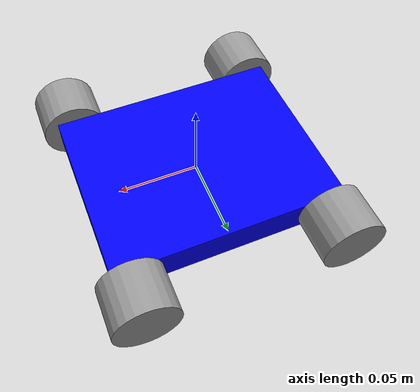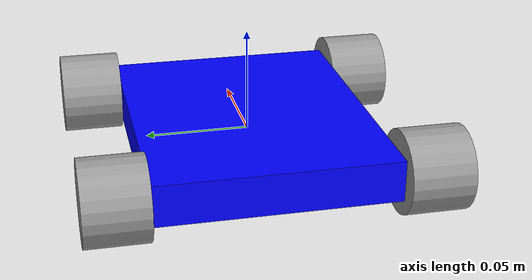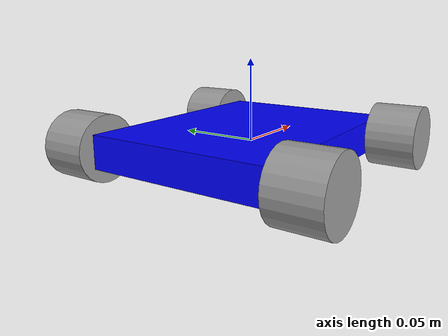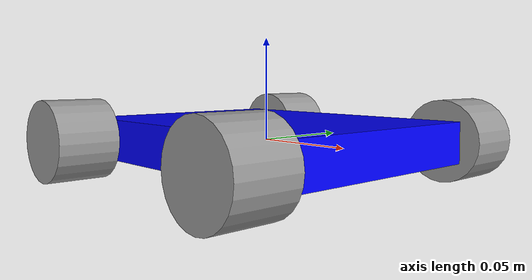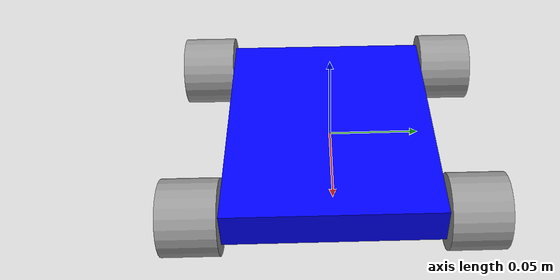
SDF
<?xml version='1.0'?>
<sdf version='1.6'>
  <model name='nanocrawler'>
    <link name='chassis'>
      <pose frame=''>0 0 0.0 0 -0 0</pose>
      <inertial>
        <mass>1</mass>
        <inertia>
          <ixx>0.166667</ixx>
          <ixy>0</ixy>
          <ixz>0</ixz>
          <iyy>0.166667</iyy>
          <iyz>0</iyz>
          <izz>0.166667</izz>
        </inertia>
        <pose frame=''>0 0 0 0 -0 0</pose>
      </inertial>
      <gravity>1</gravity>
      <self_collide>0</self_collide>
      <kinematic>0</kinematic>
      <visual name='visual'>
        <pose frame=''>0 0 0 0 -0 0</pose>
        <geometry>
          <box>
            <size>0.145 0.115 0.02</size>
          </box>
        </geometry>
        <material>
          <lighting>1</lighting>
          <script>
            <uri>file://media/materials/scripts/gazebo.material</uri>
            <name>Gazebo/Grey</name>
          </script>
          <shader type='pixel'>
            <normal_map>__default__</normal_map>
          </shader>
          <ambient>0 0 1 1</ambient>
          <diffuse>0.7 0.7 0.7 1</diffuse>
          <specular>0.01 0.01 0.01 1</specular>
          <emissive>0 0 0 1</emissive>
        </material>
        <transparency>0</transparency>
        <cast_shadows>1</cast_shadows>
      </visual>
      <collision name='collision'>
        <laser_retro>0</laser_retro>
        <max_contacts>10</max_contacts>
        <pose frame=''>0 0 0 0 -0 0</pose>
        <geometry>
          <box>
            <size>0.145 0.115 0.02</size>
          </box>
        </geometry>
        <surface>
          <friction>
            <ode>
              <mu>1</mu>
              <mu2>1</mu2>
              <fdir1>0 0 0</fdir1>
              <slip1>0</slip1>
              <slip2>0</slip2>
            </ode>
            <torsional>
              <coefficient>1</coefficient>
              <patch_radius>0</patch_radius>
              <surface_radius>0</surface_radius>
              <use_patch_radius>1</use_patch_radius>
              <ode>
                <slip>0</slip>
              </ode>
            </torsional>
          </friction>
          <bounce>
            <restitution_coefficient>0</restitution_coefficient>
            <threshold>1e+06</threshold>
          </bounce>
          <contact>
            <collide_without_contact>0</collide_without_contact>
            <collide_without_contact_bitmask>1</collide_without_contact_bitmask>
            <collide_bitmask>1</collide_bitmask>
            <ode>
              <soft_cfm>0</soft_cfm>
              <soft_erp>0.2</soft_erp>
              <kp>1e+13</kp>
              <kd>1</kd>
              <max_vel>0.01</max_vel>
              <min_depth>0</min_depth>
            </ode>
            <bullet>
              <split_impulse>1</split_impulse>
              <split_impulse_penetration_threshold>-0.01</split_impulse_penetration_threshold>
              <soft_cfm>0</soft_cfm>
              <soft_erp>0.2</soft_erp>
              <kp>1e+13</kp>
              <kd>1</kd>
            </bullet>
          </contact>
        </surface>
      </collision>
    </link>

    <link name='left_front_wheel'>
      <pose frame=''>0.0625 0.0725 0 1.5708 -0 0</pose>
      <inertial>
        <mass>1</mass>
        <inertia>
          <ixx>0.145833</ixx>
          <ixy>0</ixy>
          <ixz>0</ixz>
          <iyy>0.145833</iyy>
          <iyz>0</iyz>
          <izz>0.125</izz>
        </inertia>
        <pose frame=''>0 0 0 0 -0 0</pose>
      </inertial>
      <gravity>1</gravity>
      <self_collide>0</self_collide>
      <kinematic>0</kinematic>
      <visual name='visual'>
        <pose frame=''>0 0 0 0 -0 0</pose>
        <geometry>
          <cylinder>
            <radius>0.02</radius>
            <length>0.03</length>
          </cylinder>
        </geometry>
        <material>
          <lighting>1</lighting>
          <script>
            <uri>file://media/materials/scripts/gazebo.material</uri>
            <name>Gazebo/Grey</name>
          </script>
          <shader type='pixel'>
            <normal_map>__default__</normal_map>
          </shader>
          <ambient>0.1 0.1 0.1 1</ambient>
          <diffuse>0.7 0.7 0.7 1</diffuse>
          <specular>0.01 0.01 0.01 1</specular>
          <emissive>0 0 0 1</emissive>
        </material>
        <transparency>0</transparency>
        <cast_shadows>1</cast_shadows>
      </visual>
      <collision name='collision'>
        <laser_retro>0</laser_retro>
        <max_contacts>10</max_contacts>
        <pose frame=''>0 0 0 0 -0 0</pose>
        <geometry>
          <cylinder>
            <radius>0.02</radius>
            <length>0.03</length>
          </cylinder>
        </geometry>
        <surface>
          <friction>
            <ode>
              <mu>1</mu>
              <mu2>1</mu2>
              <fdir1>0 0 0</fdir1>
              <slip1>0</slip1>
              <slip2>0</slip2>
            </ode>
            <torsional>
              <coefficient>1</coefficient>
              <patch_radius>0</patch_radius>
              <surface_radius>0</surface_radius>
              <use_patch_radius>1</use_patch_radius>
              <ode>
                <slip>0</slip>
              </ode>
            </torsional>
          </friction>
          <bounce>
            <restitution_coefficient>0</restitution_coefficient>
            <threshold>1e+06</threshold>
          </bounce>
          <contact>
            <collide_without_contact>0</collide_without_contact>
            <collide_without_contact_bitmask>1</collide_without_contact_bitmask>
            <collide_bitmask>1</collide_bitmask>
            <ode>
              <soft_cfm>0</soft_cfm>
              <soft_erp>0.2</soft_erp>
              <kp>1e+13</kp>
              <kd>1</kd>
              <max_vel>0.01</max_vel>
              <min_depth>0</min_depth>
            </ode>
            <bullet>
              <split_impulse>1</split_impulse>
              <split_impulse_penetration_threshold>-0.01</split_impulse_penetration_threshold>
              <soft_cfm>0</soft_cfm>
              <soft_erp>0.2</soft_erp>
              <kp>1e+13</kp>
              <kd>1</kd>
            </bullet>
          </contact>
        </surface>
      </collision>
    </link>
    <joint type="revolute" name="left_front_wheel_hinge">
        <pose>-0 0 -0 0 0 0</pose>
        <child>left_front_wheel</child>
        <parent>chassis</parent>
        <axis>
          <xyz>0 0 1</xyz>
        </axis>
      </joint>

    <link name='right_front_wheel'>
      <pose frame=''>0.0625 -0.0725 0 1.5708 -0 0</pose>
      <inertial>
        <mass>1</mass>
        <inertia>
          <ixx>0.145833</ixx>
          <ixy>0</ixy>
          <ixz>0</ixz>
          <iyy>0.145833</iyy>
          <iyz>0</iyz>
          <izz>0.125</izz>
        </inertia>
        <pose frame=''>0 0 0 0 -0 0</pose>
      </inertial>
      <gravity>1</gravity>
      <self_collide>0</self_collide>
      <kinematic>0</kinematic>
      <visual name='visual'>
        <pose frame=''>0 0 0 0 -0 0</pose>
        <geometry>
          <cylinder>
            <radius>0.02</radius>
            <length>0.03</length>
          </cylinder>
        </geometry>
        <material>
          <lighting>1</lighting>
          <script>
            <uri>file://media/materials/scripts/gazebo.material</uri>
            <name>Gazebo/Grey</name>
          </script>
          <shader type='pixel'>
            <normal_map>__default__</normal_map>
          </shader>
          <ambient>0.1 0.1 0.1 1</ambient>
          <diffuse>0.7 0.7 0.7 1</diffuse>
          <specular>0.01 0.01 0.01 1</specular>
          <emissive>0 0 0 1</emissive>
        </material>
        <transparency>0</transparency>
        <cast_shadows>1</cast_shadows>
      </visual>
      <collision name='collision'>
        <laser_retro>0</laser_retro>
        <max_contacts>10</max_contacts>
        <pose frame=''>0 0 0 0 -0 0</pose>
        <geometry>
          <cylinder>
            <radius>0.02</radius>
            <length>0.03</length>
          </cylinder>
        </geometry>
        <surface>
          <friction>
            <ode>
              <mu>1</mu>
              <mu2>1</mu2>
              <fdir1>0 0 0</fdir1>
              <slip1>0</slip1>
              <slip2>0</slip2>
            </ode>
            <torsional>
              <coefficient>1</coefficient>
              <patch_radius>0</patch_radius>
              <surface_radius>0</surface_radius>
              <use_patch_radius>1</use_patch_radius>
              <ode>
                <slip>0</slip>
              </ode>
            </torsional>
          </friction>
          <bounce>
            <restitution_coefficient>0</restitution_coefficient>
            <threshold>1e+06</threshold>
          </bounce>
          <contact>
            <collide_without_contact>0</collide_without_contact>
            <collide_without_contact_bitmask>1</collide_without_contact_bitmask>
            <collide_bitmask>1</collide_bitmask>
            <ode>
              <soft_cfm>0</soft_cfm>
              <soft_erp>0.2</soft_erp>
              <kp>1e+13</kp>
              <kd>1</kd>
              <max_vel>0.01</max_vel>
              <min_depth>0</min_depth>
            </ode>
            <bullet>
              <split_impulse>1</split_impulse>
              <split_impulse_penetration_threshold>-0.01</split_impulse_penetration_threshold>
              <soft_cfm>0</soft_cfm>
              <soft_erp>0.2</soft_erp>
              <kp>1e+13</kp>
              <kd>1</kd>
            </bullet>
          </contact>
        </surface>
      </collision>
    </link>
    <joint type="revolute" name="right_front_wheel_hinge">
        <pose>-0 0 -0 0 0 0</pose>
        <child>right_front_wheel</child>
        <parent>chassis</parent>
        <axis>
          <xyz>0 0 1</xyz>
        </axis>
      </joint>

    <link name='left_rear_wheel'>
      <pose frame=''>-0.0625 0.0725 0 1.5708 -0 0</pose>
      <inertial>
        <mass>1</mass>
        <inertia>
          <ixx>0.145833</ixx>
          <ixy>0</ixy>
          <ixz>0</ixz>
          <iyy>0.145833</iyy>
          <iyz>0</iyz>
          <izz>0.125</izz>
        </inertia>
        <pose frame=''>0 0 0 0 -0 0</pose>
      </inertial>
      <gravity>1</gravity>
      <self_collide>0</self_collide>
      <kinematic>0</kinematic>
      <visual name='visual'>
        <pose frame=''>0 0 0 0 -0 0</pose>
        <geometry>
          <cylinder>
            <radius>0.02</radius>
            <length>0.03</length>
          </cylinder>
        </geometry>
        <material>
          <lighting>1</lighting>
          <script>
            <uri>file://media/materials/scripts/gazebo.material</uri>
            <name>Gazebo/Grey</name>
          </script>
          <shader type='pixel'>
            <normal_map>__default__</normal_map>
          </shader>
          <ambient>0.1 0.1 0.1 1</ambient>
          <diffuse>0.7 0.7 0.7 1</diffuse>
          <specular>0.01 0.01 0.01 1</specular>
          <emissive>0 0 0 1</emissive>
        </material>
        <transparency>0</transparency>
        <cast_shadows>1</cast_shadows>
      </visual>
      <collision name='collision'>
        <laser_retro>0</laser_retro>
        <max_contacts>10</max_contacts>
        <pose frame=''>0 0 0 0 -0 0</pose>
        <geometry>
          <cylinder>
            <radius>0.02</radius>
            <length>0.03</length>
          </cylinder>
        </geometry>
        <surface>
          <friction>
            <ode>
              <mu>1</mu>
              <mu2>1</mu2>
              <fdir1>0 0 0</fdir1>
              <slip1>0</slip1>
              <slip2>0</slip2>
            </ode>
            <torsional>
              <coefficient>1</coefficient>
              <patch_radius>0</patch_radius>
              <surface_radius>0</surface_radius>
              <use_patch_radius>1</use_patch_radius>
              <ode>
                <slip>0</slip>
              </ode>
            </torsional>
          </friction>
          <bounce>
            <restitution_coefficient>0</restitution_coefficient>
            <threshold>1e+06</threshold>
          </bounce>
          <contact>
            <collide_without_contact>0</collide_without_contact>
            <collide_without_contact_bitmask>1</collide_without_contact_bitmask>
            <collide_bitmask>1</collide_bitmask>
            <ode>
              <soft_cfm>0</soft_cfm>
              <soft_erp>0.2</soft_erp>
              <kp>1e+13</kp>
              <kd>1</kd>
              <max_vel>0.01</max_vel>
              <min_depth>0</min_depth>
            </ode>
            <bullet>
              <split_impulse>1</split_impulse>
              <split_impulse_penetration_threshold>-0.01</split_impulse_penetration_threshold>
              <soft_cfm>0</soft_cfm>
              <soft_erp>0.2</soft_erp>
              <kp>1e+13</kp>
              <kd>1</kd>
            </bullet>
          </contact>
        </surface>
      </collision>
    </link>
    <joint type="revolute" name="left_rear_wheel_hinge">
        <pose>-0 0 -0 0 0 0</pose>
        <child>left_rear_wheel</child>
        <parent>chassis</parent>
        <axis>
          <xyz>0 0 1</xyz>
        </axis>
      </joint>

    <link name='right_rear_wheel'>
      <pose frame=''>-0.0625 -0.0725 0 1.5708 -0 0</pose>
      <inertial>
        <mass>1</mass>
        <inertia>
          <ixx>0.145833</ixx>
          <ixy>0</ixy>
          <ixz>0</ixz>
          <iyy>0.145833</iyy>
          <iyz>0</iyz>
          <izz>0.125</izz>
        </inertia>
        <pose frame=''>0 0 0 0 -0 0</pose>
      </inertial>
      <gravity>1</gravity>
      <self_collide>0</self_collide>
      <kinematic>0</kinematic>
      <visual name='visual'>
        <pose frame=''>0 0 0 0 -0 0</pose>
        <geometry>
          <cylinder>
            <radius>0.02</radius>
            <length>0.03</length>
          </cylinder>
        </geometry>
        <material>
          <lighting>1</lighting>
          <script>
            <uri>file://media/materials/scripts/gazebo.material</uri>
            <name>Gazebo/Grey</name>
          </script>
          <shader type='pixel'>
            <normal_map>__default__</normal_map>
          </shader>
          <ambient>0.1 0.1 0.1 1</ambient>
          <diffuse>0.7 0.7 0.7 1</diffuse>
          <specular>0.01 0.01 0.01 1</specular>
          <emissive>0 0 0 1</emissive>
        </material>
        <transparency>0</transparency>
        <cast_shadows>1</cast_shadows>
      </visual>
      <collision name='collision'>
        <laser_retro>0</laser_retro>
        <max_contacts>10</max_contacts>
        <pose frame=''>0 0 0 0 -0 0</pose>
        <geometry>
          <cylinder>
            <radius>0.02</radius>
            <length>0.03</length>
          </cylinder>
        </geometry>
        <surface>
          <friction>
            <ode>
              <mu>1</mu>
              <mu2>1</mu2>
              <fdir1>0 0 0</fdir1>
              <slip1>0</slip1>
              <slip2>0</slip2>
            </ode>
            <torsional>
              <coefficient>1</coefficient>
              <patch_radius>0</patch_radius>
              <surface_radius>0</surface_radius>
              <use_patch_radius>1</use_patch_radius>
              <ode>
                <slip>0</slip>
              </ode>
            </torsional>
          </friction>
          <bounce>
            <restitution_coefficient>0</restitution_coefficient>
            <threshold>1e+06</threshold>
          </bounce>
          <contact>
            <collide_without_contact>0</collide_without_contact>
            <collide_without_contact_bitmask>1</collide_without_contact_bitmask>
            <collide_bitmask>1</collide_bitmask>
            <ode>
              <soft_cfm>0</soft_cfm>
              <soft_erp>0.2</soft_erp>
              <kp>1e+13</kp>
              <kd>1</kd>
              <max_vel>0.01</max_vel>
              <min_depth>0</min_depth>
            </ode>
            <bullet>
              <split_impulse>1</split_impulse>
              <split_impulse_penetration_threshold>-0.01</split_impulse_penetration_threshold>
              <soft_cfm>0</soft_cfm>
              <soft_erp>0.2</soft_erp>
              <kp>1e+13</kp>
              <kd>1</kd>
            </bullet>
          </contact>
        </surface>
      </collision>
    </link>
    <joint type="revolute" name="right_rear_wheel_hinge">
        <pose>-0 0 -0 0 0 0</pose>
        <child>right_rear_wheel</child>
        <parent>chassis</parent>
        <axis>
          <xyz>0 0 1</xyz>
        </axis>
      </joint>
    <static>0</static>
    <allow_auto_disable>1</allow_auto_disable>
  </model>
</sdf>
